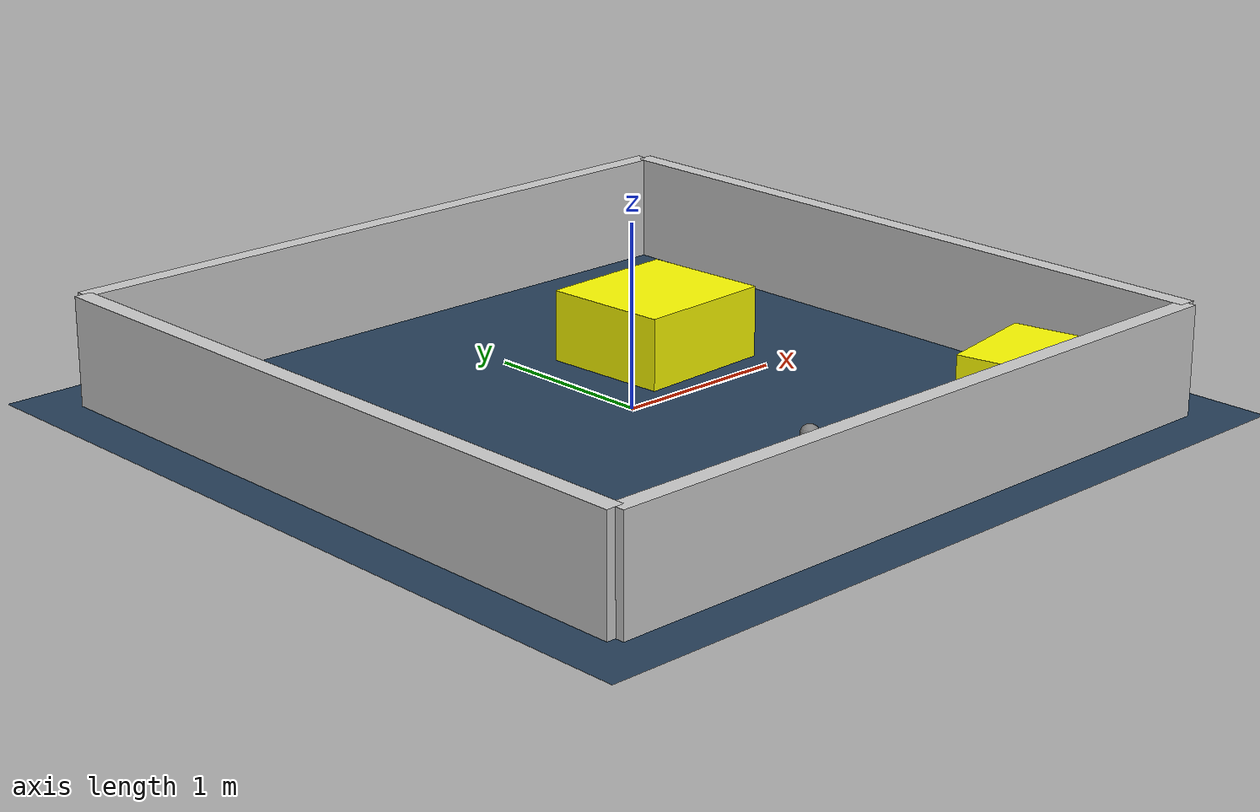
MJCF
<?xml version="1.0" ?>
<mujoco model="generated_environment">
  <option timestep="0.01" integrator="RK4" cone="elliptic"/>
  <default>
    <geom density="1"/>
  </default>
  <asset>
    <texture builtin="gradient" height="3072" rgb1="0.3 0.5 0.7" rgb2="0 0 0" type="skybox" width="512"/>
    <texture builtin="checker" height="300" mark="edge" markrgb="0.8 0.8 0.8" name="groundplane" rgb1="0.2 0.3 0.4" rgb2="0.1 0.2 0.3" type="2d" width="300"/>
    <material name="groundplane" reflectance="0.2" texrepeat="5 5" texture="groundplane" texuniform="true"/>
    <material name="robot" rgba="0.0 1.0 0.0 1"/>
  </asset>
  <worldbody>
    <light dir="0 0 -1" directional="true" pos="0 0 1.5"/>
    <geom condim="4" friction="1.0 0.005 0.001" material="groundplane" name="floor" size="0 0 0.05" type="plane"/>
    <body name="walls">
      <geom name="wall_1" condim="4" pos="-2.0 0.0 0.3" rgba="0.800000011920929 0.800000011920929 0.800000011920929 1.0" size="0.05 2.0 0.3" type="box"/>
      <geom name="wall_2" condim="4" pos="2.0 0.0 0.3" rgba="0.800000011920929 0.800000011920929 0.800000011920929 1.0" size="0.05 2.0 0.3" type="box"/>
      <geom name="wall_3" condim="4" pos="0.0 -2.0 0.3" rgba="0.800000011920929 0.800000011920929 0.800000011920929 1.0" size="2.0 0.05 0.3" type="box"/>
      <geom name="wall_4" condim="4" pos="0.0 2.0 0.3" rgba="0.800000011920929 0.800000011920929 0.800000011920929 1.0" size="2.0 0.05 0.3" type="box"/>
    </body>
    <body name="robot">
      <joint name="joint_x" type="slide" pos="0 0 0" axis="1 0 0"/>
      <joint name="joint_y" type="slide" pos="0 0 0" axis="0 1 0"/>
      <geom name="robot" type="sphere" pos="0.003926333771767654 -1.245773933628123 0.2" size="0.05" mass="5." friction="1.0 0.005 0.0001" condim="4"/>
      <site name="sensor_ball"/>
    </body>
    <body name="obstacle_1_movable">
      <geom name="obstacle_1_movable" condim="4" pos="1.3378692868434725 -1.5594520946831787 0.2" euler="0 0 191.22854090033323" friction="1.0 0.005 0.001" rgba="1 1 0 1" size="0.31339924542131486 0.28152076958464645 0.2" type="box" mass="0.1"/>
      <joint type="free"/>
    </body>
    <body name="obstacle_2_movable">
      <geom name="obstacle_2_movable" condim="4" pos="0.6477706409356843 0.49936590593458496 0.2" euler="0 0 2.8822768092763162" friction="1.0 0.005 0.001" rgba="1 1 0 1" size="0.4010465132730958 0.36636045505987874 0.2" type="box" mass="0.1"/>
      <joint type="free"/>
    </body>
  </worldbody>
  <actuator>
    <motor name="actuator_x" joint="joint_x" gear="1" ctrlrange="-1 1"/>
    <motor name="actuator_y" joint="joint_y" gear="1" ctrlrange="-1 1"/>
  </actuator>
</mujoco>
